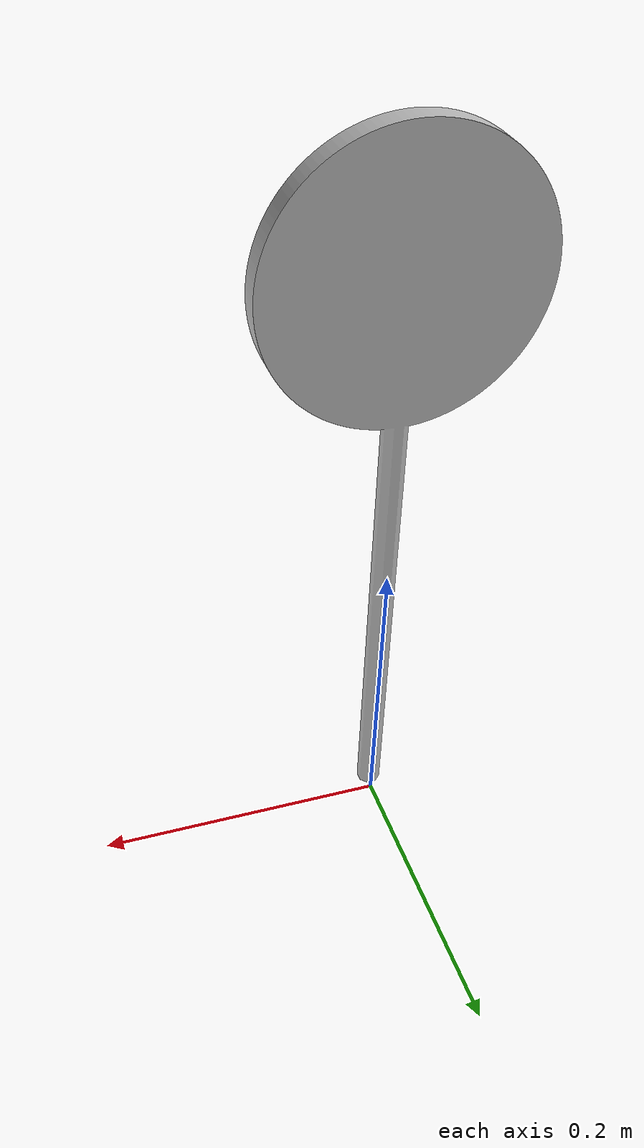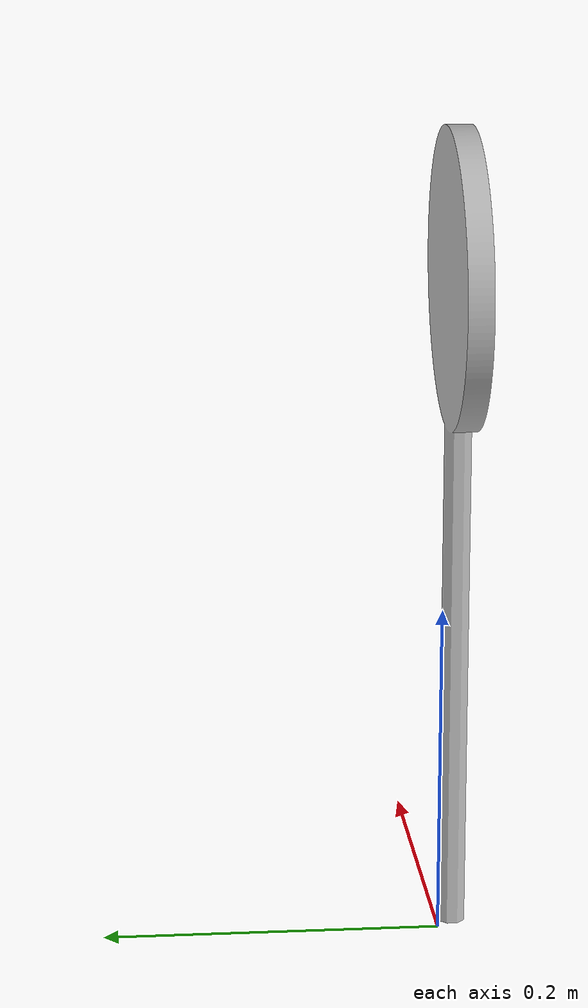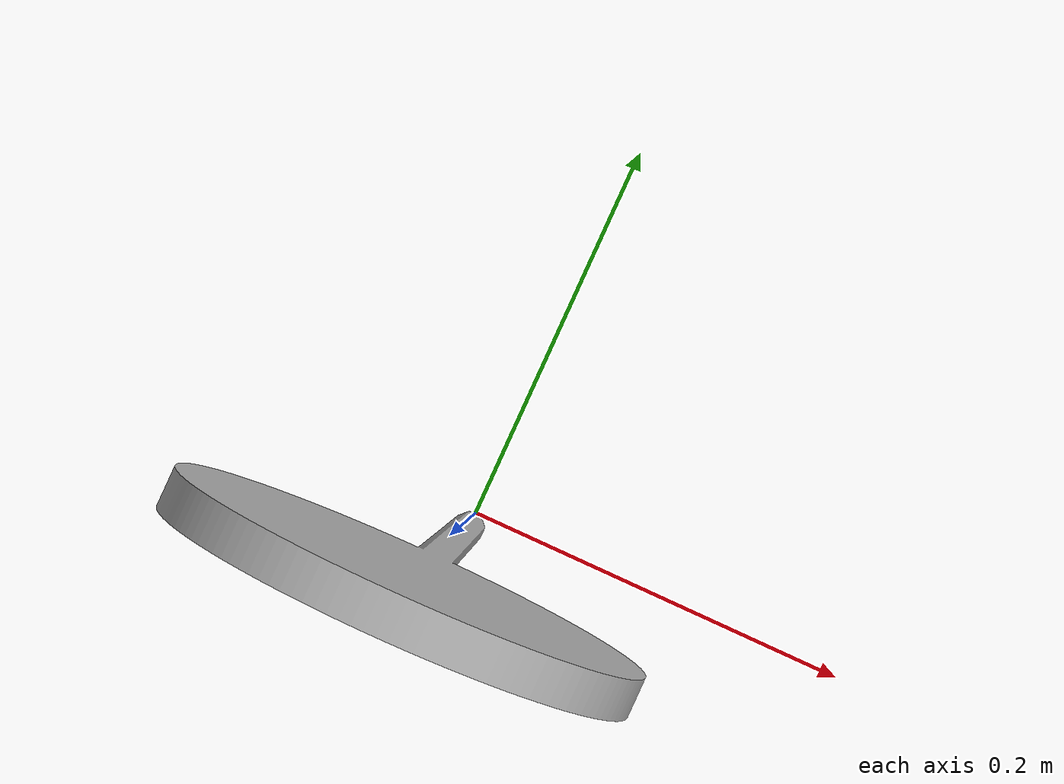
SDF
<?xml version='1.0'?>
<sdf version="1.4">
  <model name="right_arrow">
    <pose>0 0 0.4 1.57079632679 0 0</pose>
    <static>true</static>
    <link name="link">
      <inertial>
        <mass>1.0</mass>
        <inertia> <!-- inertias are tricky to compute -->
          <!-- http://gazebosim.org/tutorials?tut=inertia&cat=build_robot -->
          <ixx>0.083</ixx>       <!-- for a box: ixx = 0.083 * mass * (y*y + z*z) -->
          <ixy>0.0</ixy>         <!-- for a box: ixy = 0 -->
          <ixz>0.0</ixz>         <!-- for a box: ixz = 0 -->
          <iyy>0.083</iyy>       <!-- for a box: iyy = 0.083 * mass * (x*x + z*z) -->
          <iyz>0.0</iyz>         <!-- for a box: iyz = 0 -->
          <izz>0.083</izz>       <!-- for a box: izz = 0.083 * mass * (x*x + y*y) -->
        </inertia>
      </inertial>
      <collision name="collision">
        <geometry>
          <mesh>
           <uri>model://right_arrow/meshes/sign.dae</uri>
           <scale> -0.005 0.005 0.005</scale>
          </mesh>
        </geometry>
      </collision>

      <visual name="visual">
        <geometry>
          <mesh>
           <uri>model://right_arrow/meshes/sign.dae</uri>
           <scale> -0.005 0.005 0.005</scale>
          </mesh>
        </geometry>

        <material>
          <script>
            <uri>model://right_arrow/materials/scripts</uri>
            <uri>model://right_arrow/materials/textures</uri>
            <name>left_arrow_mat</name>
          </script>
        </material>
      </visual>

    </link>
  </model>
</sdf>
